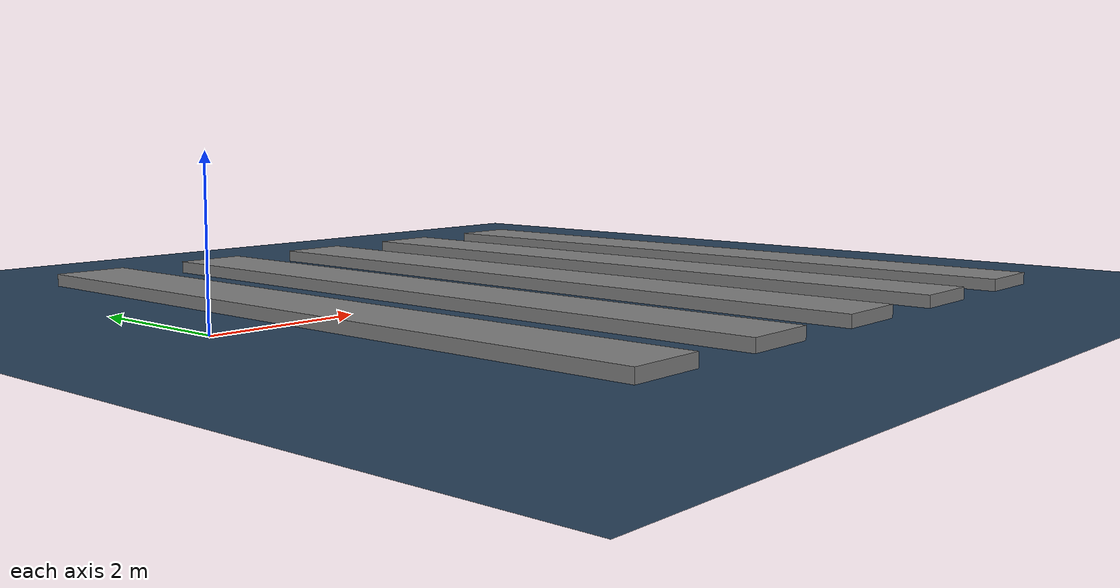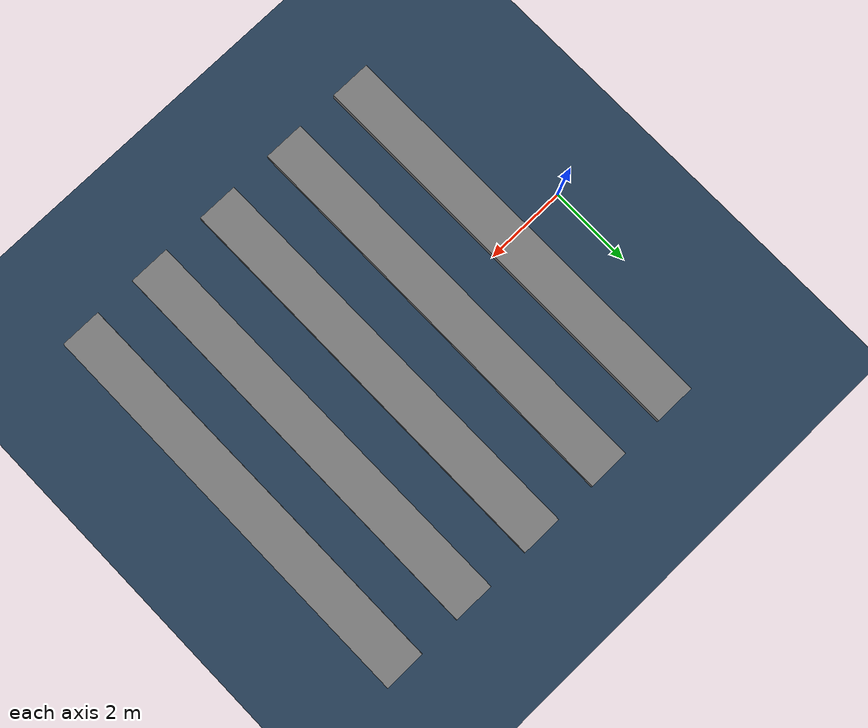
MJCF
<mujoco model="obstacle_5">
  <!-- Terrain Type: obstacle, Level: 5, Obstacle height: 0.1650, length: 1.0000, gap: 1.0000 -->
  <statistic center="0 0 0.1" extent="0.8" />
  <visual>
    <headlight diffuse="0.6 0.6 0.6" ambient="0.3 0.3 0.3" specular="0 0 0" />
    <rgba haze="0.15 0.25 0.35 1" />
    <global azimuth="-130" elevation="-20" />
  </visual>
  <asset>
    <texture type="skybox" builtin="gradient" rgb1="0.3 0.5 0.7" rgb2="0 0 0" width="512" height="3072" />
    <texture type="2d" name="groundplane" builtin="checker" mark="edge" rgb1="0.2 0.3 0.4" rgb2="0.1 0.2 0.3" markrgb="0.8 0.8 0.8" width="300" height="300" />
    <material name="groundplane" texture="groundplane" texuniform="true" texrepeat="5 5" reflectance="0.0" />
  </asset>
  <worldbody>
    <light pos="0 0 1.5" dir="0 0 -1" directional="true" />
    <geom name="floor" size="0 0 0.05" type="plane" material="groundplane" />
    <geom pos="1.5 0.0 0.0825" type="box" size="0.5 5.0 0.0825" quat="1.0 0.0 0.0 0.0" />
    <geom pos="3.5 0.0 0.0825" type="box" size="0.5 5.0 0.0825" quat="1.0 0.0 0.0 0.0" />
    <geom pos="5.5 0.0 0.0825" type="box" size="0.5 5.0 0.0825" quat="1.0 0.0 0.0 0.0" />
    <geom pos="7.5 0.0 0.0825" type="box" size="0.5 5.0 0.0825" quat="1.0 0.0 0.0 0.0" />
    <geom pos="9.5 0.0 0.0825" type="box" size="0.5 5.0 0.0825" quat="1.0 0.0 0.0 0.0" />
  </worldbody>
</mujoco>
